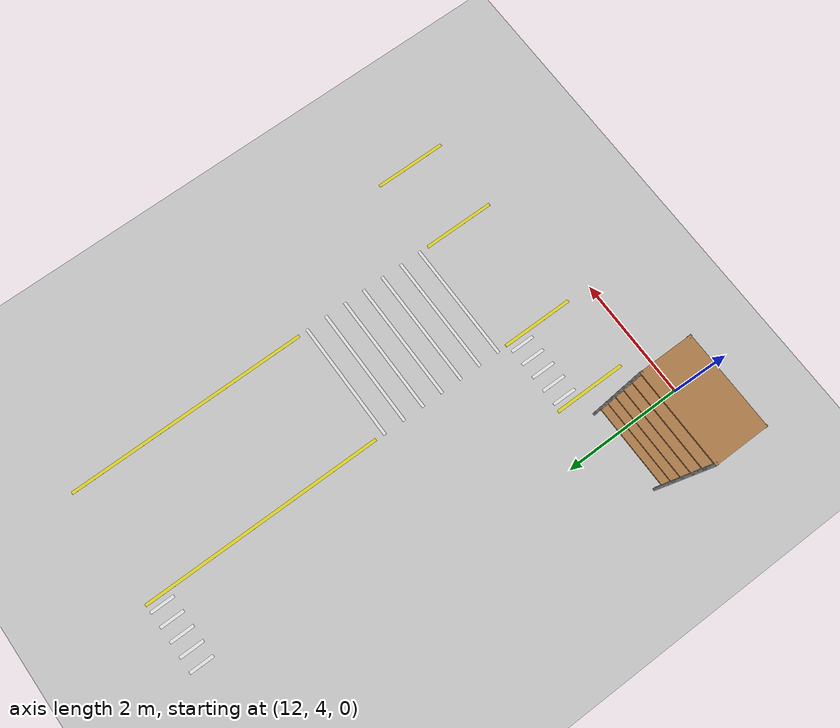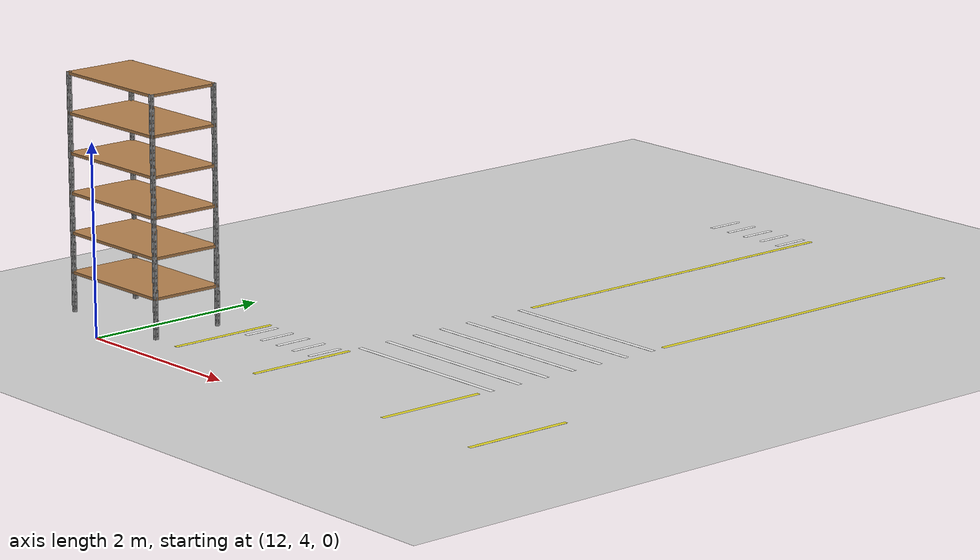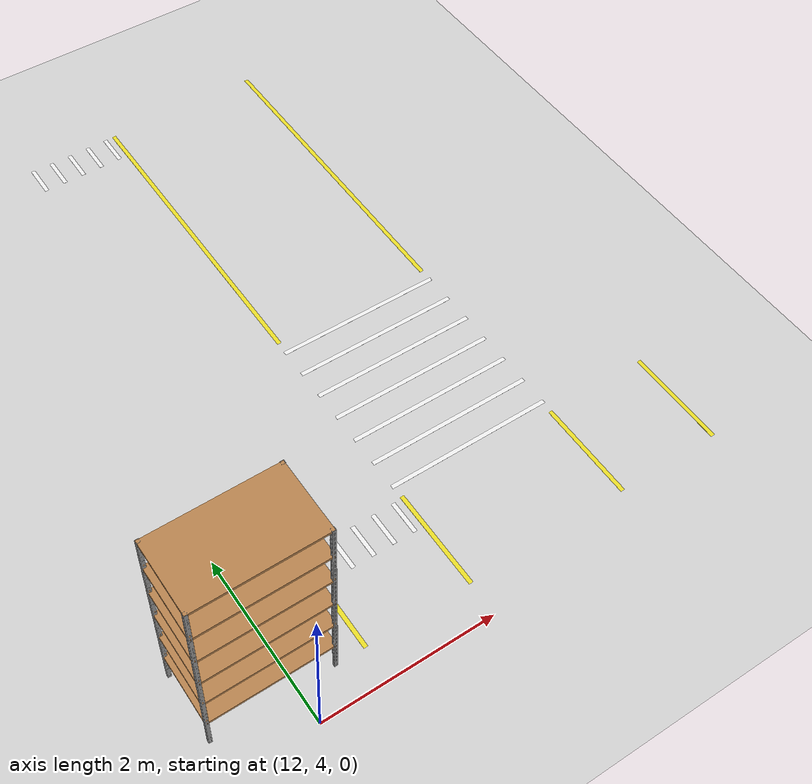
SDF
<sdf version="1.6">
 <world name="default">
  <model name="ground_plane">
   <static>1</static>
   <link name="link">
    <collision name="collision">
     <geometry><plane><normal>0 0 1</normal><size>100 100</size></plane></geometry>
     <surface><friction><ode><mu>100</mu><mu2>50</mu2></ode></friction></surface>
    </collision>
    <visual name="visual">
     <cast_shadows>0</cast_shadows>
     <geometry><plane><normal>0 0 1</normal><size>100 100</size></plane></geometry>
     <material>
      <script><uri>file://media/materials/scripts/gazebo.material</uri><name>Gazebo/Grey</name></script>
     </material>
    </visual>
   </link>
  </model>
  <model name="shelfDemo_140cmx80cm_0">
   <link name="link_0">
    <inertial>
     <mass>1</mass>
     <inertia>
      <ixx>0.166667</ixx>
      <ixy>0</ixy>
      <ixz>0</ixz>
      <iyy>0.166667</iyy>
      <iyz>0</iyz>
      <izz>0.166667</izz>
     </inertia>
    </inertial>
    <visual name="visual">
     <pose>0 0 0.414 0 -0 0</pose>
     <geometry><box><size>1.4 0.8 0.03</size></box></geometry>
     <material>
      <lighting>1</lighting>
      <script><uri>file://media/materials/scripts/gazebo.material</uri><name>Gazebo/WoodFloor</name></script>
      <shader type="pixel"><normal_map>__default__</normal_map></shader>
     </material>
    </visual>
    <visual name="ModelPreview_0::link_0::visual_2">
     <pose>0 0 0.828 0 -0 0</pose>
     <geometry><box><size>1.4 0.8 0.03</size></box></geometry>
     <material>
      <lighting>1</lighting>
      <script><uri>file://media/materials/scripts/gazebo.material</uri><name>Gazebo/WoodFloor</name></script>
      <shader type="pixel"><normal_map>__default__</normal_map></shader>
     </material>
    </visual>
    <visual name="ModelPreview_0::link_0::visual_3">
     <pose>0 0 1.242 0 -0 0</pose>
     <geometry><box><size>1.4 0.8 0.03</size></box></geometry>
     <material>
      <lighting>1</lighting>
      <script><uri>file://media/materials/scripts/gazebo.material</uri><name>Gazebo/WoodFloor</name></script>
      <shader type="pixel"><normal_map>__default__</normal_map></shader>
     </material>
    </visual>
    <visual name="ModelPreview_0::link_0::visual_4">
     <pose>0 0 1.656 0 -0 0</pose>
     <geometry><box><size>1.4 0.8 0.03</size></box></geometry>
     <material>
      <lighting>1</lighting>
      <script><uri>file://media/materials/scripts/gazebo.material</uri><name>Gazebo/WoodFloor</name></script>
      <shader type="pixel"><normal_map>__default__</normal_map></shader>
     </material>
    </visual>
    <visual name="ModelPreview_0::link_0::visual_5">
     <pose>0 0 2.07 0 -0 0</pose>
     <geometry><box><size>1.4 0.8 0.03</size></box></geometry>
     <material>
      <lighting>1</lighting>
      <script><uri>file://media/materials/scripts/gazebo.material</uri><name>Gazebo/WoodFloor</name></script>
      <shader type="pixel"><normal_map>__default__</normal_map></shader>
     </material>
    </visual>
    <visual name="ModelPreview_0::link_0::visual_6">
     <pose>0 0 2.484 0 -0 0</pose>
     <geometry><box><size>1.4 0.8 0.03</size></box></geometry>
     <material>
      <lighting>1</lighting>
      <script><uri>file://media/materials/scripts/gazebo.material</uri><name>Gazebo/WoodFloor</name></script>
      <shader type="pixel"><normal_map>__default__</normal_map></shader>
     </material>
    </visual>
    <visual name="ModelPreview_0::link_0::visual_7">
     <pose>0.685 0.385 0 0 -0 0</pose>
     <geometry>
      <mesh><uri>model://shelfDemo_91/model/2-5mDirek.stl</uri><scale>0.0008 0.0008 0.001</scale></mesh>
     </geometry>
     <material>
      <lighting>1</lighting>
      <script><uri>file://media/materials/scripts/gazebo.material</uri><name>Gazebo/Grey</name></script>
      <shader type="pixel"><normal_map>__default__</normal_map></shader>
      <ambient>0.3 0.3 0.3 1</ambient>
      <diffuse>0.7 0.7 0.7 1</diffuse>
      <specular>0.01 0.01 0.01 1</specular>
      <emissive>0 0 0 1</emissive>
     </material>
    </visual>
    <visual name="ModelPreview_0::link_0::visual_8">
     <pose>-0.685 0.385 0 0 -0 0</pose>
     <geometry>
      <mesh><uri>model://shelfDemo_91/model/2-5mDirek.stl</uri><scale>0.0008 0.0008 0.001</scale></mesh>
     </geometry>
     <material>
      <lighting>1</lighting>
      <script><uri>file://media/materials/scripts/gazebo.material</uri><name>Gazebo/Grey</name></script>
      <shader type="pixel"><normal_map>__default__</normal_map></shader>
      <ambient>0.3 0.3 0.3 1</ambient>
      <diffuse>0.7 0.7 0.7 1</diffuse>
      <specular>0.01 0.01 0.01 1</specular>
      <emissive>0 0 0 1</emissive>
     </material>
    </visual>
    <visual name="ModelPreview_0::link_0::visual_9">
     <pose>0.685 -0.385 0 0 -0 0</pose>
     <geometry>
      <mesh><uri>model://shelfDemo_91/model/2-5mDirek.stl</uri><scale>0.0008 0.0008 0.001</scale></mesh>
     </geometry>
     <material>
      <lighting>1</lighting>
      <script><uri>file://media/materials/scripts/gazebo.material</uri><name>Gazebo/Grey</name></script>
      <shader type="pixel"><normal_map>__default__</normal_map></shader>
      <ambient>0.3 0.3 0.3 1</ambient>
      <diffuse>0.7 0.7 0.7 1</diffuse>
      <specular>0.01 0.01 0.01 1</specular>
      <emissive>0 0 0 1</emissive>
     </material>
    </visual>
    <visual name="ModelPreview_0::link_0::visual_10">
     <pose>-0.685 -0.385 0 0 -0 0</pose>
     <geometry>
      <mesh><uri>model://shelfDemo_91/model/2-5mDirek.stl</uri><scale>0.0008 0.0008 0.001</scale></mesh>
     </geometry>
     <material>
      <lighting>1</lighting>
      <script><uri>file://media/materials/scripts/gazebo.material</uri><name>Gazebo/Grey</name></script>
      <shader type="pixel"><normal_map>__default__</normal_map></shader>
      <ambient>0.3 0.3 0.3 1</ambient>
      <diffuse>0.7 0.7 0.7 1</diffuse>
      <specular>0.01 0.01 0.01 1</specular>
      <emissive>0 0 0 1</emissive>
     </material>
    </visual>
    <collision name="collision_6">
     <pose>0.685 0.385 1.25 0 -0 0</pose>
     <geometry><box><size>0.02 0.02 2.5</size></box></geometry>
    </collision>
    <collision name="collision_7">
     <pose>0.685 -0.385 1.25 0 -0 0</pose>
     <geometry><box><size>0.02 0.02 2.5</size></box></geometry>
    </collision>
    <collision name="collision_8">
     <pose>-0.685 0.385 1.25 0 -0 0</pose>
     <geometry><box><size>0.02 0.02 2.5</size></box></geometry>
    </collision>
    <collision name="collision">
     <pose>0 0 0.414 0 -0 0</pose>
     <geometry><box><size>1.4 0.8 0.03</size></box></geometry>
    </collision>
    <collision name="collision_1">
     <pose>0 0 0.828 0 -0 0</pose>
     <geometry><box><size>1.4 0.8 0.03</size></box></geometry>
    </collision>
    <collision name="collision_2">
     <pose>0 0 1.242 0 -0 0</pose>
     <geometry><box><size>1.4 0.8 0.03</size></box></geometry>
    </collision>
    <collision name="collision_3">
     <pose>0 0 1.656 0 -0 0</pose>
     <geometry><box><size>1.4 0.8 0.03</size></box></geometry>
    </collision>
    <collision name="collision_4">
     <pose>0 0 2.07 0 -0 0</pose>
     <geometry><box><size>1.4 0.8 0.03</size></box></geometry>
    </collision>
    <collision name="collision_5">
     <pose>0 0 2.484 0 -0 0</pose>
     <geometry><box><size>1.4 0.8 0.03</size></box></geometry>
    </collision>
    <collision name="collision_9">
     <pose>-0.685 -0.385 1.25 0 -0 0</pose>
     <geometry><box><size>0.02 0.02 2.5</size></box></geometry>
    </collision>
   </link>
   <static>1</static>
   <pose>11.75 4.8 0 0 -0 0</pose>
  </model>
  <model name="line120cm_9">
   <link name="link_1">
    <inertial>
     <mass>1</mass>
     <inertia>
      <ixx>0.166667</ixx>
      <ixy>0</ixy>
      <ixz>0</ixz>
      <iyy>0.166667</iyy>
      <iyz>0</iyz>
      <izz>0.166667</izz>
     </inertia>
    </inertial>
    <visual name="visual">
     <geometry><box><size>1.2 0.05 0.001</size></box></geometry>
     <material>
      <script><uri>file://media/materials/scripts/gazebo.material</uri><name>Gazebo/Yellow</name></script>
     </material>
    </visual>
    <collision name="collision"><geometry><box><size>1.2 0.05 1e-05</size></box></geometry></collision>
   </link>
   <static>1</static>
   <pose>14.025 5 0 0 -0 1.5708</pose>
  </model>
  <model name="line120cm_10">
   <link name="link_1">
    <inertial>
     <mass>1</mass>
     <inertia>
      <ixx>0.166667</ixx>
      <ixy>0</ixy>
      <ixz>0</ixz>
      <iyy>0.166667</iyy>
      <iyz>0</iyz>
      <izz>0.166667</izz>
     </inertia>
    </inertial>
    <visual name="visual">
     <geometry><box><size>1.2 0.05 0.001</size></box></geometry>
     <material>
      <script><uri>file://media/materials/scripts/gazebo.material</uri><name>Gazebo/Yellow</name></script>
     </material>
    </visual>
    <collision name="collision"><geometry><box><size>1.2 0.05 1e-05</size></box></geometry></collision>
   </link>
   <static>1</static>
   <pose>15.975 5 0 0 -0 1.5708</pose>
  </model>
  <model name="line120cm_11">
   <link name="link_1">
    <inertial>
     <mass>1</mass>
     <inertia>
      <ixx>0.166667</ixx>
      <ixy>0</ixy>
      <ixz>0</ixz>
      <iyy>0.166667</iyy>
      <iyz>0</iyz>
      <izz>0.166667</izz>
     </inertia>
    </inertial>
    <visual name="visual">
     <geometry><box><size>1.2 0.05 0.001</size></box></geometry>
     <material>
      <script><uri>file://media/materials/scripts/gazebo.material</uri><name>Gazebo/Yellow</name></script>
     </material>
    </visual>
    <collision name="collision"><geometry><box><size>1.2 0.05 1e-05</size></box></geometry></collision>
   </link>
   <static>1</static>
   <pose>12.775 5 0 0 -0 1.5708</pose>
  </model>
  <model name="line120cm_12">
   <link name="link_1">
    <inertial>
     <mass>1</mass>
     <inertia>
      <ixx>0.166667</ixx>
      <ixy>0</ixy>
      <ixz>0</ixz>
      <iyy>0.166667</iyy>
      <iyz>0</iyz>
      <izz>0.166667</izz>
     </inertia>
    </inertial>
    <visual name="visual">
     <geometry><box><size>1.2 0.05 0.001</size></box></geometry>
     <material>
      <script><uri>file://media/materials/scripts/gazebo.material</uri><name>Gazebo/Yellow</name></script>
     </material>
    </visual>
    <collision name="collision"><geometry><box><size>1.2 0.05 1e-05</size></box></geometry></collision>
   </link>
   <static>1</static>
   <pose>17.225 5 0 0 -0 1.5708</pose>
  </model>
  <model name="zebra_crossing_200cmx210cm">
   <link name="link_0">
    <inertial>
     <mass>1</mass>
     <inertia>
      <ixx>0.166667</ixx>
      <ixy>0</ixy>
      <ixz>0</ixz>
      <iyy>0.166667</iyy>
      <iyz>0</iyz>
      <izz>0.166667</izz>
     </inertia>
    </inertial>
    <visual name="ModelPreview_1::link_0::visual_6">
     <pose>-1.05 0 0 0 -0 0</pose>
     <geometry><box><size>0.05 2 0.001</size></box></geometry>
     <material>
      <lighting>1</lighting>
      <script><uri>file://media/materials/scripts/gazebo.material</uri><name>Gazebo/White</name></script>
     </material>
    </visual>
    <visual name="ModelPreview_1::link_0::visual_1">
     <pose>0.35 0 0 0 -0 0</pose>
     <geometry><box><size>0.05 2 0.001</size></box></geometry>
     <material>
      <lighting>1</lighting>
      <script><uri>file://media/materials/scripts/gazebo.material</uri><name>Gazebo/White</name></script>
     </material>
    </visual>
    <visual name="ModelPreview_1::link_0::visual_5">
     <pose>-0.7 0 0 0 -0 0</pose>
     <geometry><box><size>0.05 2 0.001</size></box></geometry>
     <material>
      <lighting>1</lighting>
      <script><uri>file://media/materials/scripts/gazebo.material</uri><name>Gazebo/White</name></script>
     </material>
    </visual>
    <visual name="ModelPreview_1::link_0::visual_3">
     <pose>1.05 0 0 0 -0 0</pose>
     <geometry><box><size>0.05 2 0.001</size></box></geometry>
     <material>
      <lighting>1</lighting>
      <script><uri>file://media/materials/scripts/gazebo.material</uri><name>Gazebo/White</name></script>
     </material>
    </visual>
    <visual name="ModelPreview_1::link_0::visual_2">
     <pose>0.7 0 0 0 -0 0</pose>
     <geometry><box><size>0.05 2 0.001</size></box></geometry>
     <material>
      <lighting>1</lighting>
      <script><uri>file://media/materials/scripts/gazebo.material</uri><name>Gazebo/White</name></script>
     </material>
    </visual>
    <visual name="visual">
     <geometry><box><size>0.05 2 0.001</size></box></geometry>
     <material>
      <lighting>1</lighting>
      <script><uri>file://media/materials/scripts/gazebo.material</uri><name>Gazebo/White</name></script>
     </material>
    </visual>
    <visual name="ModelPreview_1::link_0::visual_4">
     <pose>-0.35 0 0 0 -0 0</pose>
     <geometry><box><size>0.05 2 0.001</size></box></geometry>
     <material>
      <lighting>1</lighting>
      <script><uri>file://media/materials/scripts/gazebo.material</uri><name>Gazebo/White</name></script>
     </material>
    </visual>
    <collision name="collision_2">
     <pose>0.7 0 0 0 -0 0</pose>
     <geometry><box><size>0.05 2 1e-05</size></box></geometry>
    </collision>
    <collision name="collision_4">
     <pose>-0.35 0 0 0 -0 0</pose>
     <geometry><box><size>0.05 2 1e-05</size></box></geometry>
    </collision>
    <collision name="collision"><geometry><box><size>0.05 2 1e-05</size></box></geometry></collision>
    <collision name="collision_5">
     <pose>-0.7 0 0 0 -0 0</pose>
     <geometry><box><size>0.05 2 1e-05</size></box></geometry>
    </collision>
    <collision name="collision_1">
     <pose>0.35 0 0 0 -0 0</pose>
     <geometry><box><size>0.05 2 1e-05</size></box></geometry>
    </collision>
    <collision name="collision_3">
     <pose>1.05 0 0 0 -0 0</pose>
     <geometry><box><size>0.05 2 1e-05</size></box></geometry>
    </collision>
    <collision name="collision_6">
     <pose>-1.05 0 0 0 -0 0</pose>
     <geometry><box><size>0.05 2 1e-05</size></box></geometry>
    </collision>
   </link>
   <static>1</static>
   <pose>15 6.8 0 0 -0 1.5708</pose>
  </model>
  <model name="zebro_crossing_40cmx120cm">
   <link name="link_1">
    <inertial>
     <mass>1</mass>
     <inertia>
      <ixx>0.166667</ixx>
      <ixy>0</ixy>
      <ixz>0</ixz>
      <iyy>0.166667</iyy>
      <iyz>0</iyz>
      <izz>0.166667</izz>
     </inertia>
    </inertial>
    <visual name="ModelPreview_3::link_1::visual_4">
     <pose>-0.5 0 0 0 -0 0</pose>
     <geometry><box><size>0.05 0.4 0.001</size></box></geometry>
     <material>
      <lighting>1</lighting>
      <script><uri>file://media/materials/scripts/gazebo.material</uri><name>Gazebo/White</name></script>
     </material>
    </visual>
    <visual name="ModelPreview_3::link_1::visual_1">
     <pose>0.25 0 0 0 -0 0</pose>
     <geometry><box><size>0.05 0.4 0.001</size></box></geometry>
     <material>
      <lighting>1</lighting>
      <script><uri>file://media/materials/scripts/gazebo.material</uri><name>Gazebo/White</name></script>
     </material>
    </visual>
    <visual name="ModelPreview_3::link_1::visual_2">
     <pose>0.5 0 0 0 -0 0</pose>
     <geometry><box><size>0.05 0.4 0.001</size></box></geometry>
     <material>
      <lighting>1</lighting>
      <script><uri>file://media/materials/scripts/gazebo.material</uri><name>Gazebo/White</name></script>
     </material>
    </visual>
    <visual name="visual">
     <geometry><box><size>0.05 0.4 0.001</size></box></geometry>
     <material>
      <lighting>1</lighting>
      <script><uri>file://media/materials/scripts/gazebo.material</uri><name>Gazebo/White</name></script>
     </material>
    </visual>
    <visual name="ModelPreview_3::link_1::visual_3">
     <pose>-0.25 0 0 0 -0 0</pose>
     <geometry><box><size>0.05 0.4 0.001</size></box></geometry>
     <material>
      <lighting>1</lighting>
      <script><uri>file://media/materials/scripts/gazebo.material</uri><name>Gazebo/White</name></script>
     </material>
    </visual>
    <collision name="collision_1">
     <pose>0.25 0 0 0 -0 0</pose>
     <geometry><box><size>0.05 0.4 1e-06</size></box></geometry>
    </collision>
    <collision name="collision_2">
     <pose>0.5 0 0 0 -0 0</pose>
     <geometry><box><size>0.05 0.4 1e-06</size></box></geometry>
    </collision>
    <collision name="collision_3">
     <pose>-0.25 0 0 0 -0 0</pose>
     <geometry><box><size>0.05 0.4 1e-06</size></box></geometry>
    </collision>
    <collision name="collision"><geometry><box><size>0.05 0.4 1e-06</size></box></geometry></collision>
    <collision name="collision_4">
     <pose>-0.5 0 0 0 -0 0</pose>
     <geometry><box><size>0.05 0.4 1e-06</size></box></geometry>
    </collision>
   </link>
   <static>1</static>
   <pose>13.4005 5.38109 0 0 -0 0</pose>
  </model>
  <model name="line4m_0">
   <link name="link_3">
    <inertial>
     <mass>1</mass>
     <inertia>
      <ixx>0.166667</ixx>
      <ixy>0</ixy>
      <ixz>0</ixz>
      <iyy>0.166667</iyy>
      <iyz>0</iyz>
      <izz>0.166667</izz>
     </inertia>
    </inertial>
    <visual name="visual">
     <geometry><box><size>0.05 4 0.001</size></box></geometry>
     <material>
      <lighting>1</lighting>
      <script><uri>file://media/materials/scripts/gazebo.material</uri><name>Gazebo/Yellow</name></script>
     </material>
    </visual>
   </link>
   <static>1</static>
   <pose>15.975 10 0 0 -0 0</pose>
  </model>
  <model name="line4m_1">
   <link name="link_3">
    <inertial>
     <mass>1</mass>
     <inertia>
      <ixx>0.166667</ixx>
      <ixy>0</ixy>
      <ixz>0</ixz>
      <iyy>0.166667</iyy>
      <iyz>0</iyz>
      <izz>0.166667</izz>
     </inertia>
    </inertial>
    <visual name="visual">
     <geometry><box><size>0.05 4 0.001</size></box></geometry>
     <material>
      <lighting>1</lighting>
      <script><uri>file://media/materials/scripts/gazebo.material</uri><name>Gazebo/Yellow</name></script>
     </material>
    </visual>
   </link>
   <static>1</static>
   <pose>14.025 10 0 0 -0 0</pose>
  </model>
  <model name="zebro_crossing_40cmx120cm_0">
   <link name="link_1">
    <inertial>
     <mass>1</mass>
     <inertia>
      <ixx>0.166667</ixx>
      <ixy>0</ixy>
      <ixz>0</ixz>
      <iyy>0.166667</iyy>
      <iyz>0</iyz>
      <izz>0.166667</izz>
     </inertia>
    </inertial>
    <visual name="ModelPreview_3::link_1::visual_4">
     <pose>-0.5 0 0 0 -0 0</pose>
     <geometry><box><size>0.05 0.4 0.001</size></box></geometry>
     <material>
      <lighting>1</lighting>
      <script><uri>file://media/materials/scripts/gazebo.material</uri><name>Gazebo/White</name></script>
     </material>
    </visual>
    <visual name="ModelPreview_3::link_1::visual_1">
     <pose>0.25 0 0 0 -0 0</pose>
     <geometry><box><size>0.05 0.4 0.001</size></box></geometry>
     <material>
      <lighting>1</lighting>
      <script><uri>file://media/materials/scripts/gazebo.material</uri><name>Gazebo/White</name></script>
     </material>
    </visual>
    <visual name="ModelPreview_3::link_1::visual_2">
     <pose>0.5 0 0 0 -0 0</pose>
     <geometry><box><size>0.05 0.4 0.001</size></box></geometry>
     <material>
      <lighting>1</lighting>
      <script><uri>file://media/materials/scripts/gazebo.material</uri><name>Gazebo/White</name></script>
     </material>
    </visual>
    <visual name="visual">
     <geometry><box><size>0.05 0.4 0.001</size></box></geometry>
     <material>
      <lighting>1</lighting>
      <script><uri>file://media/materials/scripts/gazebo.material</uri><name>Gazebo/White</name></script>
     </material>
    </visual>
    <visual name="ModelPreview_3::link_1::visual_3">
     <pose>-0.25 0 0 0 -0 0</pose>
     <geometry><box><size>0.05 0.4 0.001</size></box></geometry>
     <material>
      <lighting>1</lighting>
      <script><uri>file://media/materials/scripts/gazebo.material</uri><name>Gazebo/White</name></script>
     </material>
    </visual>
    <collision name="collision_1">
     <pose>0.25 0 0 0 -0 0</pose>
     <geometry><box><size>0.05 0.4 1e-06</size></box></geometry>
    </collision>
    <collision name="collision_2">
     <pose>0.5 0 0 0 -0 0</pose>
     <geometry><box><size>0.05 0.4 1e-06</size></box></geometry>
    </collision>
    <collision name="collision_3">
     <pose>-0.25 0 0 0 -0 0</pose>
     <geometry><box><size>0.05 0.4 1e-06</size></box></geometry>
    </collision>
    <collision name="collision"><geometry><box><size>0.05 0.4 1e-06</size></box></geometry></collision>
    <collision name="collision_4">
     <pose>-0.5 0 0 0 -0 0</pose>
     <geometry><box><size>0.05 0.4 1e-06</size></box></geometry>
    </collision>
   </link>
   <static>1</static>
   <pose>13.4 11.8 0 0 -0 0</pose>
  </model>
 </world>
</sdf>
